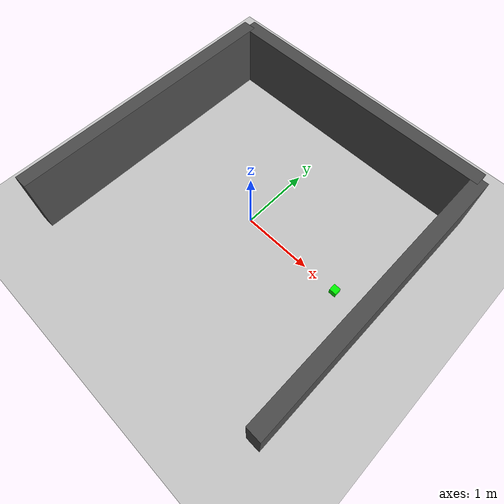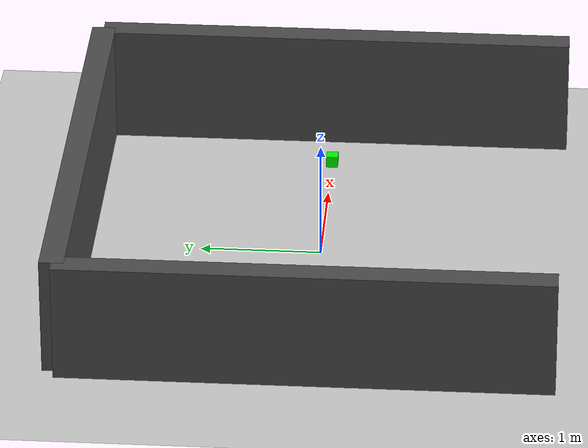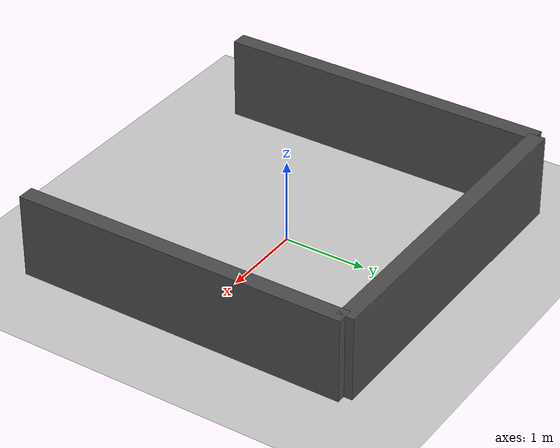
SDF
<?xml version="1.0" ?>
<sdf version="1.9">
  <world name="maze_world">
    <physics name="1ms" type="ignored">
      <max_step_size>0.001</max_step_size>
      <real_time_factor>1.0</real_time_factor>
    </physics>
    <plugin
      filename="gz-sim-physics-system"
      name="gz::sim::systems::Physics">
    </plugin>
    <plugin
      filename="gz-sim-user-commands-system"
      name="gz::sim::systems::UserCommands">
    </plugin>
    <plugin
      filename="gz-sim-scene-broadcaster-system"
      name="gz::sim::systems::SceneBroadcaster">
    </plugin>

    <light type="directional" name="sun">
      <cast_shadows>true</cast_shadows>
      <pose>0 0 10 0 0 0</pose>
      <diffuse>0.8 0.8 0.8 1</diffuse>
      <specular>0.2 0.2 0.2 1</specular>
      <attenuation>
        <range>1000</range>
        <constant>0.9</constant>
        <linear>0.01</linear>
        <quadratic>0.001</quadratic>
      </attenuation>
      <direction>-0.5 0.1 -0.9</direction>
    </light>

    <model name="ground_plane">
      <static>true</static>
      <link name="link">
        <collision name="collision">
          <geometry>
            <plane>
              <normal>0 0 1</normal>
              <size>100 100</size>
            </plane>
          </geometry>
        </collision>
        <visual name="visual">
          <geometry>
            <plane>
              <normal>0 0 1</normal>
              <size>100 100</size>
            </plane>
          </geometry>
          <material>
            <ambient>0.8 0.8 0.8 1</ambient>
            <diffuse>0.8 0.8 0.8 1</diffuse>
            <specular>0.8 0.8 0.8 1</specular>
          </material>
        </visual>
      </link>
    </model>

    <!-- Maze Walls -->
    <model name="wall_1">
      <static>true</static>
      <pose>2 0 0.5 0 0 0</pose>
      <link name="link">
        <collision name="collision">
          <geometry>
            <box>
              <size>0.2 4 1</size>
            </box>
          </geometry>
        </collision>
        <visual name="visual">
          <geometry>
            <box>
              <size>0.2 4 1</size>
            </box>
          </geometry>
          <material>
            <ambient>0.3 0.3 0.3 1</ambient>
            <diffuse>0.3 0.3 0.3 1</diffuse>
          </material>
        </visual>
      </link>
    </model>

    <model name="wall_2">
      <static>true</static>
      <pose>-2 0 0.5 0 0 0</pose>
      <link name="link">
        <collision name="collision">
          <geometry>
            <box>
              <size>0.2 4 1</size>
            </box>
          </geometry>
        </collision>
        <visual name="visual">
          <geometry>
            <box>
              <size>0.2 4 1</size>
            </box>
          </geometry>
          <material>
            <ambient>0.3 0.3 0.3 1</ambient>
            <diffuse>0.3 0.3 0.3 1</diffuse>
          </material>
        </visual>
      </link>
    </model>

    <model name="wall_3">
      <static>true</static>
      <pose>0 2 0.5 0 0 0</pose>
      <link name="link">
        <collision name="collision">
          <geometry>
            <box>
              <size>4 0.2 1</size>
            </box>
          </geometry>
        </collision>
        <visual name="visual">
          <geometry>
            <box>
              <size>4 0.2 1</size>
            </box>
          </geometry>
          <material>
            <ambient>0.3 0.3 0.3 1</ambient>
            <diffuse>0.3 0.3 0.3 1</diffuse>
          </material>
        </visual>
      </link>
    </model>

    <!-- Target Box -->
    <model name="target_box">
      <pose>1.5 0 0.05 0 0 0</pose>
      <link name="link">
        <inertial>
          <mass>0.1</mass>
          <inertia>
            <ixx>0.0001</ixx>
            <ixy>0</ixy>
            <ixz>0</ixz>
            <iyy>0.0001</iyy>
            <iyz>0</iyz>
            <izz>0.0001</izz>
          </inertia>
        </inertial>
        <collision name="collision">
          <geometry>
            <box>
              <size>0.1 0.1 0.1</size>
            </box>
          </geometry>
          <surface>
            <friction>
              <ode>
                <mu>1.0</mu>
                <mu2>1.0</mu2>
              </ode>
            </friction>
          </surface>
        </collision>
        <visual name="visual">
          <geometry>
            <box>
              <size>0.1 0.1 0.1</size>
            </box>
          </geometry>
          <material>
            <ambient>0 1 0 1</ambient>
            <diffuse>0 1 0 1</diffuse>
          </material>
        </visual>
      </link>
    </model>

  </world>
</sdf>
